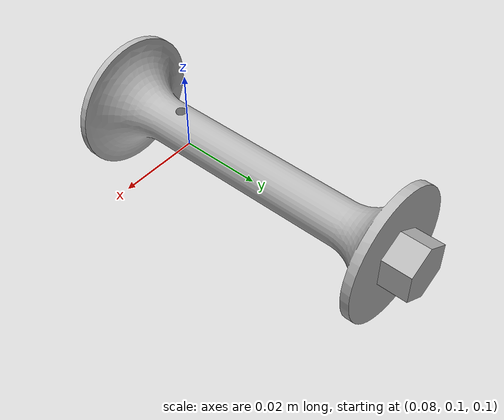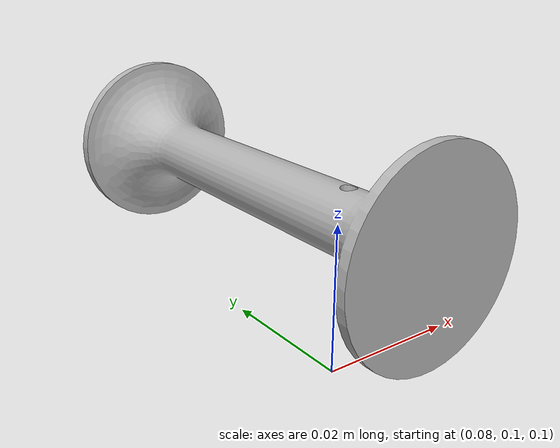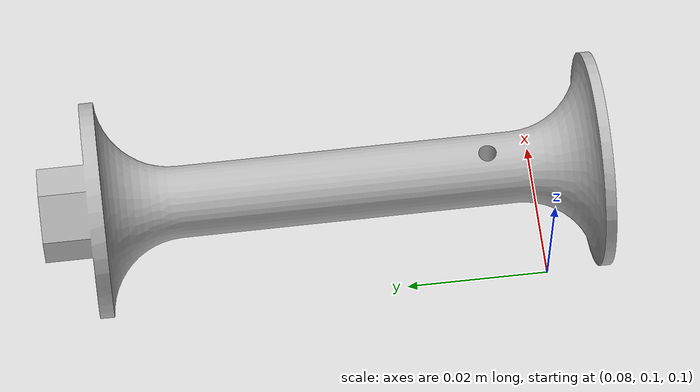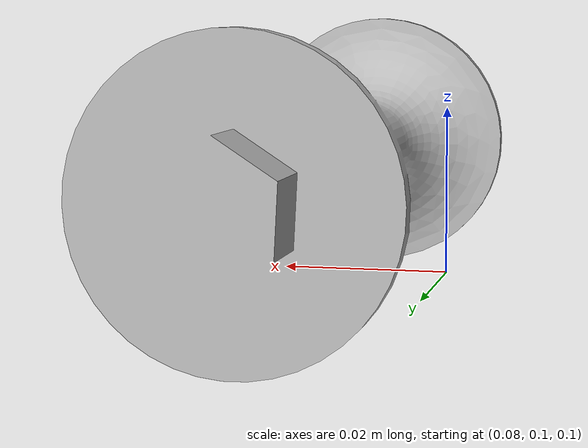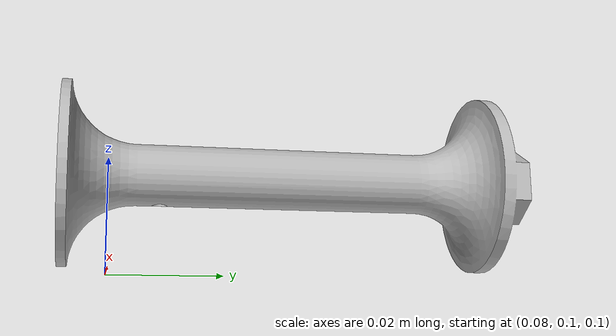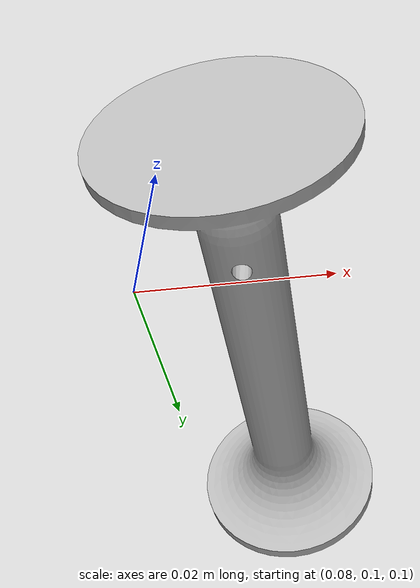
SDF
<?xml version="1.0" ?>
<sdf version="1.7">
  <model name="carrete">

    <static>false</static>

    <link name="link">

      <!-- VISUAL -->
      <visual name="visual">
        <geometry>
          <mesh>
            <uri>file:///home/fonsivillarreal/DT/src/FD/meshes/carrete_pr.dae</uri>
            <scale>1 1 1</scale>
          </mesh>
        </geometry>
      </visual>

      <!-- COLLISION -->
      <collision name="collision">
        <geometry>
          <mesh>
            <uri>file:///home/fonsivillarreal/DT/src/FD/meshes/carrete_pr.dae</uri>
            <scale>1 1 1</scale>
          </mesh>
        </geometry>
      </collision>

      <!-- INERCIA -->
      <inertial>
        <mass>1.0</mass>
        <inertia>
          <ixx>0.1</ixx>
          <iyy>0.1</iyy>
          <izz>0.1</izz>
          <ixy>0.0</ixy>
          <ixz>0.0</ixz>
          <iyz>0.0</iyz>
        </inertia>
      </inertial>

    </link>

  </model>
</sdf>
